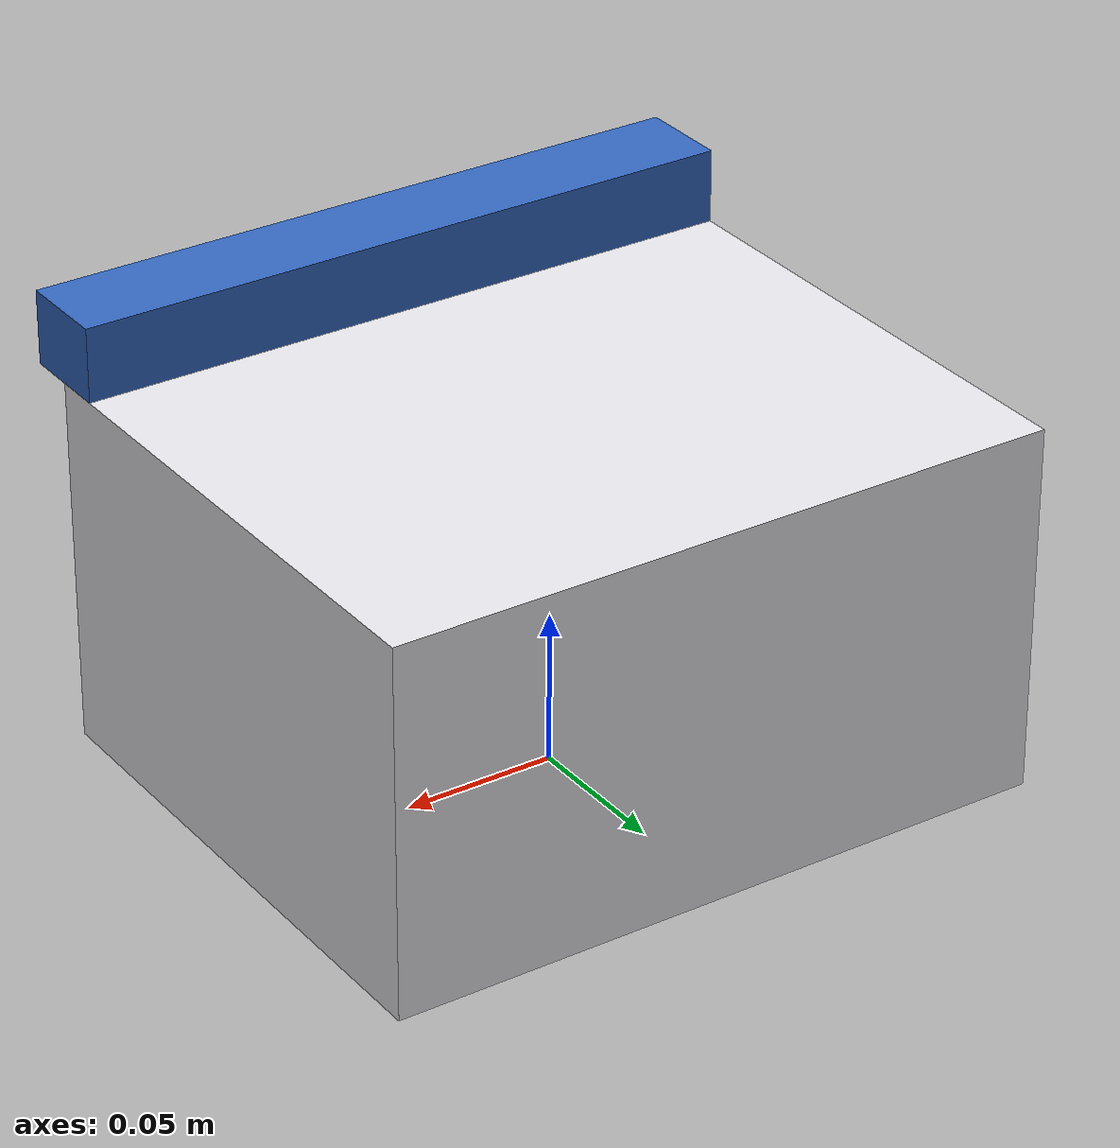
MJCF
<?xml version="1.0" encoding="utf-8"?>
<mujoco model="real_lab_wuhan_university_platereader">
  <compiler angle="radian" autolimits="true"/>
  <default>
    <default class="body"><geom contype="1" conaffinity="1"/></default>
  </default>
  <worldbody>
    <body name="base">
      <geom type="box" size="0.11 0.09 0.06" pos="0 0 0.06" rgba="0.9 0.9 0.92 1" class="body"/>
      <body name="lid" pos="0 -0.09 0.12">
        <joint name="lid_joint" type="hinge" axis="0 1 0" range="0 1.5" damping="0.6" frictionloss="0.25"/>
  <geom type="box" size="0.11 0.015 0.012" pos="0 0 0.012" rgba="0.2 0.4 0.75 1" class="body"/>
      </body>
    </body>
  </worldbody>
</mujoco>
